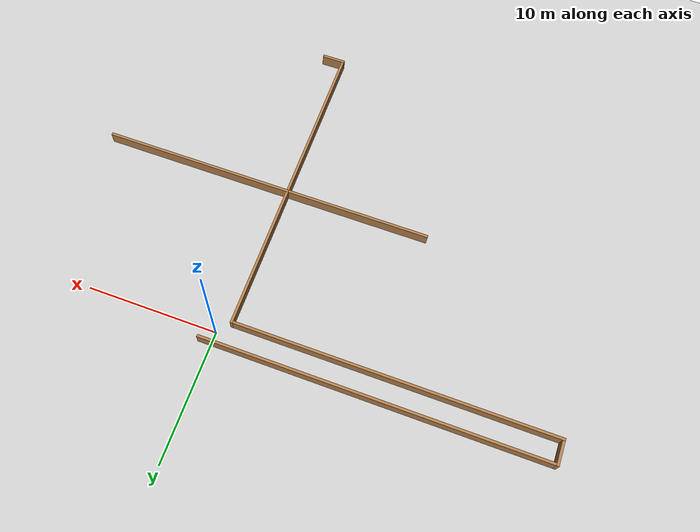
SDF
<sdf version="1.6">
 <world name="default">
  <light name="sun" type="directional">
   <pose>0 0 10 0 -0 0</pose>
   <diffuse>0.8 0.8 0.8 1</diffuse>
   <specular>0.2 0.2 0.2 1</specular>
   <attenuation>
    <range>1000</range>
    <constant>0.9</constant>
    <linear>0.01</linear>
    <quadratic>0.001</quadratic>
   </attenuation>
   <direction>-0.5 0.1 -0.9</direction>
  </light>
  <model name="ground_plane">
   <static>1</static>
   <link name="link">
    <collision name="collision">
     <geometry><plane><normal>0 0 1</normal><size>100 100</size></plane></geometry>
     <surface>
      <contact><collide_bitmask>65535</collide_bitmask></contact>
      <friction><ode><mu>100</mu><mu2>50</mu2></ode></friction>
     </surface>
    </collision>
    <visual name="visual">
     <cast_shadows>0</cast_shadows>
     <geometry><plane><normal>0 0 1</normal><size>100 100</size></plane></geometry>
     <material>
      <script><uri>file://media/materials/scripts/gazebo.material</uri><name>Gazebo/Grey</name></script>
     </material>
    </visual>
   </link>
  </model>
  <gravity>0 0 -9.8</gravity>
  <magnetic_field>6e-06 2.3e-05 -4.2e-05</magnetic_field>
  <atmosphere type="adiabatic"/>
  <physics name="default_physics" default="0" type="ode">
   <max_step_size>0.001</max_step_size>
   <real_time_factor>1</real_time_factor>
   <real_time_update_rate>1000</real_time_update_rate>
  </physics>
  <scene><ambient>0.4 0.4 0.4 1</ambient><background>0.7 0.7 0.7 1</background><shadows>1</shadows></scene>
  <audio><device>default</device></audio>
  <spherical_coordinates>
   <surface_model>EARTH_WGS84</surface_model>
   <latitude_deg>0</latitude_deg>
   <longitude_deg>0</longitude_deg>
   <elevation>0</elevation>
   <heading_deg>0</heading_deg>
  </spherical_coordinates>
  <model name="L-shaped">
   <link name="Wall_0">
    <collision name="Wall_0_Collision">
     <geometry><box><size>25.8 0.2 1.0</size></box></geometry>
     <pose>0 0 0.5 0 0 0</pose>
    </collision>
    <visual name="Wall_0_Visual">
     <pose>0 0 0.5 0 -0 0</pose>
     <geometry><box><size>25.8 0.2 1.0</size></box></geometry>
     <material>
      <script><uri>file://media/materials/scripts/gazebo.material</uri><name>Gazebo/Wood</name></script>
      <ambient>1 1 1 1</ambient>
     </material>
     <meta><layer>0</layer></meta>
    </visual>
    <pose>-11.9 0.9 0 0 0 0</pose>
   </link>
   <link name="Wall_1">
    <collision name="Wall_1_Collision">
     <geometry><box><size>0.2 1.8 1.0</size></box></geometry>
     <pose>0 0 0.5 0 0 0</pose>
    </collision>
    <visual name="Wall_1_Visual">
     <pose>0 0 0.5 0 -0 0</pose>
     <geometry><box><size>0.2 1.8 1.0</size></box></geometry>
     <material>
      <script><uri>file://media/materials/scripts/gazebo.material</uri><name>Gazebo/Wood</name></script>
      <ambient>1 1 1 1</ambient>
     </material>
     <meta><layer>0</layer></meta>
    </visual>
    <pose>-24.9 0.1 0 0 0 0</pose>
   </link>
   <link name="Wall_2">
    <collision name="Wall_2_Collision">
     <geometry><box><size>24.0 0.2 1.0</size></box></geometry>
     <pose>0 0 0.5 0 0 0</pose>
    </collision>
    <visual name="Wall_2_Visual">
     <pose>0 0 0.5 0 0 0</pose>
     <geometry><box><size>24.0 0.2 1.0</size></box></geometry>
     <material>
      <script><uri>file://media/materials/scripts/gazebo.material</uri><name>Gazebo/Wood</name></script>
      <ambient>1 1 1 1</ambient>
     </material>
     <meta><layer>0</layer></meta>
    </visual>
    <pose>-13.0 -0.9 0 0 0 0</pose>
   </link>
   <link name="Wall_3">
    <collision name="Wall_3_Collision">
     <geometry><box><size>0.2 24.0 1.0</size></box></geometry>
     <pose>0 0 0.5 0 0 0</pose>
    </collision>
    <visual name="Wall_3_Visual">
     <pose>0 0 0.5 0 0 0</pose>
     <geometry><box><size>0.2 24.0 1.0</size></box></geometry>
     <material>
      <script><uri>file://media/materials/scripts/gazebo.material</uri><name>Gazebo/Wood</name></script>
      <ambient>1 1 1 1</ambient>
     </material>
     <meta><layer>0</layer></meta>
    </visual>
    <pose>-0.9 -12.8 0 0 0 0</pose>
   </link>
   <link name="Wall_4">
    <collision name="Wall_4_Collision">
     <geometry><box><size>1.8 0.2 1.0</size></box></geometry>
     <pose>0 0 0.5 0 0 0</pose>
    </collision>
    <visual name="Wall_4_Visual">
     <pose>0 0 0.5 0 0 0</pose>
     <geometry><box><size>1.8 0.2 1.0</size></box></geometry>
     <material>
      <script><uri>file://media/materials/scripts/gazebo.material</uri><name>Gazebo/Wood</name></script>
      <ambient>1 1 1 1</ambient>
     </material>
     <meta><layer>0</layer></meta>
    </visual>
    <pose>-0.1 -24.9 0 0 0 0</pose>
   </link>
   <link name="Wall_5">
    <collision name="Wall_5_Collision">
     <geometry><box><size>0.2 25.8 1.0</size></box></geometry>
     <pose>0 0 0.5 0 -0 0</pose>
    </collision>
    <visual name="Wall_5_Visual">
     <pose>0 0 0.5 0 0 0</pose>
     <geometry><box><size>0.2 25.8 1.0</size></box></geometry>
     <material>
      <script><uri>file://media/materials/scripts/gazebo.material</uri><name>Gazebo/Wood</name></script>
      <ambient>1 1 1 1</ambient>
     </material>
     <meta><layer>0</layer></meta>
    </visual>
    <pose>0.9 -12.1 0 0 0 1.57079632679</pose>
   </link>
   <static>1</static>
  </model>
 </world>
</sdf>
